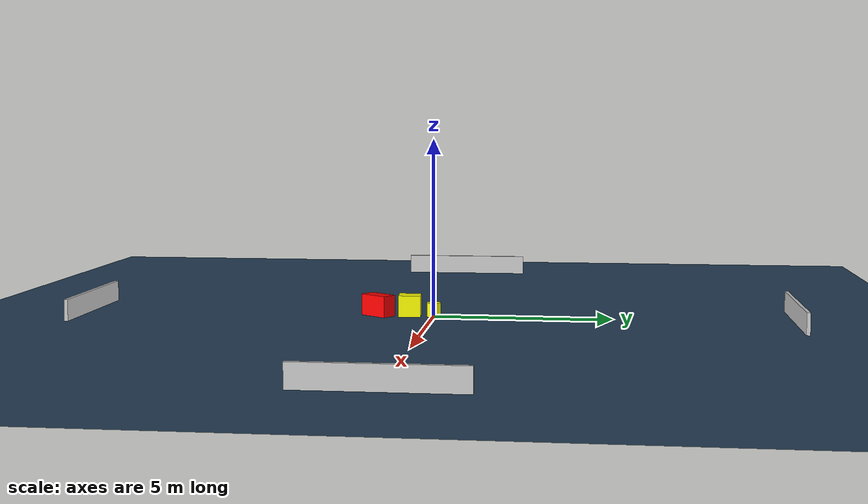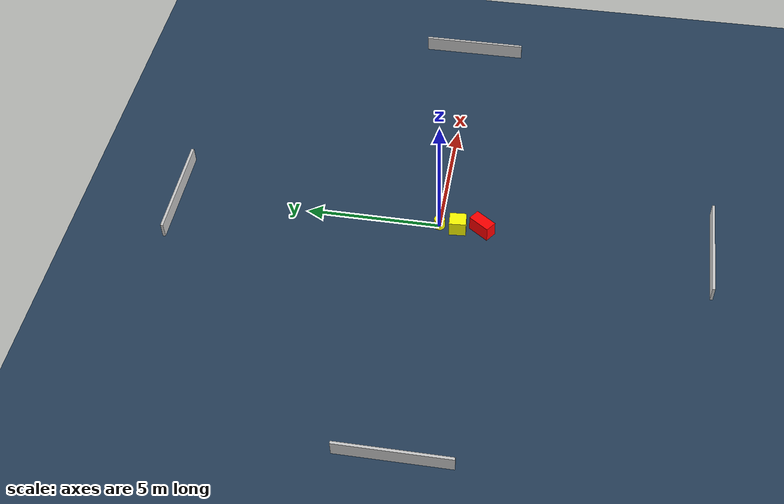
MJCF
<?xml version="1.0" ?>
<mujoco model="generated_environment">
  <option timestep="0.01" integrator="RK4" cone="elliptic"/>
  <default>
    <geom density="1"/>
  </default>
  <asset>
    <texture builtin="gradient" height="3072" name="skybox" rgb1="0.3 0.5 0.7" rgb2="0 0 0" type="skybox" width="512"/>
    <texture builtin="checker" height="300" name="groundplane" rgb1="0.2 0.3 0.4" rgb2="0.1 0.2 0.3" type="2d" width="300"/>
    <material name="groundplane" reflectance="0.2" texrepeat="5 5" texture="groundplane"/>
  </asset>
  <worldbody>
    <light dir="0 0 -1" directional="true" pos="0 0 1.5"/>
    <geom condim="3" friction="0.5 0.005 0.001" material="groundplane" name="floor" pos="0 0 0" size="0 0 0.05" type="plane"/>
    <body name="walls">
      <geom name="wall_1" condim="4" pos="-10.0 0.0 0.3" rgba="0.800000011920929 0.800000011920929 0.800000011920929 1.0" size="0.05 2.0 0.3" type="box"/>
      <geom name="wall_2" condim="4" pos="10.0 0.0 0.3" rgba="0.800000011920929 0.800000011920929 0.800000011920929 1.0" size="0.05 2.0 0.3" type="box"/>
      <geom name="wall_3" condim="4" pos="0.0 -10.0 0.3" rgba="0.800000011920929 0.800000011920929 0.800000011920929 1.0" size="2.0 0.05 0.3" type="box"/>
      <geom name="wall_4" condim="4" pos="0.0 10.0 0.3" rgba="0.800000011920929 0.800000011920929 0.800000011920929 1.0" size="2.0 0.05 0.3" type="box"/>
    </body>
    <body name="robot">
      <joint name="joint_x" type="slide" pos="0 0 0" axis="1 0 0"/>
      <joint name="joint_y" type="slide" pos="0 0 0" axis="0 1 0"/>
      <geom name="robot" type="cylinder" pos="0.0 0.0 0.2" size="0.2 0.2 0.0" mass="5.0" friction="1.0 0.005 0.0001" condim="4" rgba="1.0 1.0 0.0 1.0"/>
    </body>
    <body name="obstacle_1_movable">
      <geom name="obstacle_1_movable" condim="4" pos="-0.07043804878888875 -0.689156387391433 0.3" euler="0 0 273.743728726449" friction="0.0 0.005 0.001" rgba="1.0 1.0 0.0 1.0" size="0.31006673394042794 0.27792165242815375 0.3" type="box" mass="0.1"/>
      <joint type="free"/>
    </body>
    <body name="obstacle_2_static">
      <geom name="obstacle_2_static" condim="4" pos="-0.01680924581494877 -1.5911647767093702 0.3" euler="0 0 144.51194713342156" friction="0.0 0.005 0.001" rgba="1.0 0.0 0.0 1.0" size="0.2199748139675788 0.4364319246699423 0.3" type="box"/>
    </body>
  </worldbody>
  <actuator>
    <motor name="actuator_x" joint="joint_x" gear="1" ctrlrange="-1 1"/>
    <motor name="actuator_y" joint="joint_y" gear="1" ctrlrange="-1 1"/>
  </actuator>
</mujoco>
